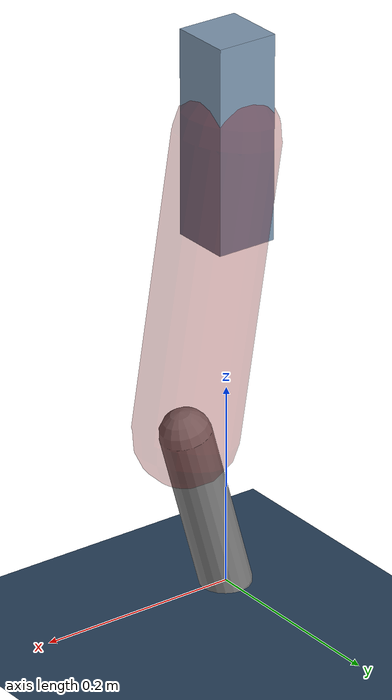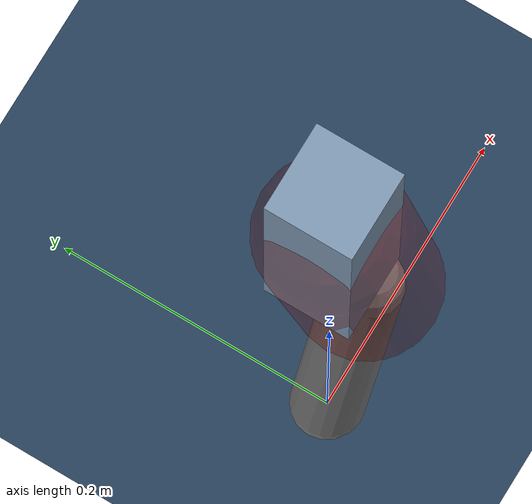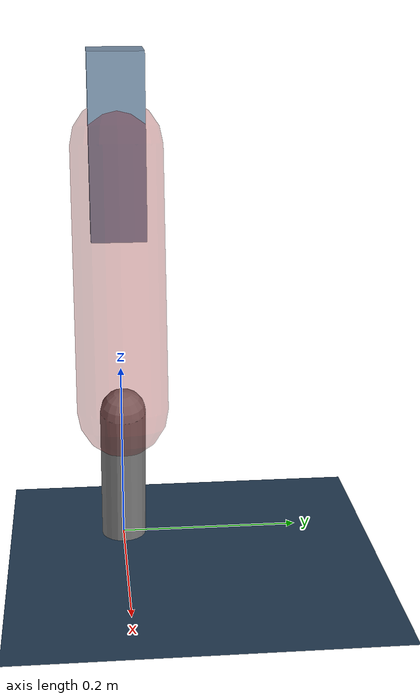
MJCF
<mujoco model="Hopper2D">
	<compiler inertiafromgeom="true" angle="radian" />
	<option timestep="0.001" integrator="implicit" cone="elliptic" solver="Newton" tolerance="1e-10" />

	<default>
		<geom contype="1" conaffinity="1" condim="3" friction="2 0.005 0.0001" solref="0.005 1" />
		<joint limited="true" damping="0.1" />
	</default>

	<asset>
		<texture name="skybox" type="skybox" builtin="gradient" rgb1=".4 .6 .8" rgb2="0 0 0" width="800" height="800" />
		<texture name="grid" type="2d" builtin="checker" rgb1=".1 .2 .3" rgb2=".2 .3 .4" width="300" height="300" mark="edge" markrgb=".2 .3 .4" />
		<material name="ground" texture="grid" texrepeat="1 1" texuniform="true" reflectance="0.1" />
		<material name="leg" rgba="0.5 0.6 0.7 1" />
	</asset>

	<worldbody>

		<geom name="floor" type="plane" size="5 5 0.25" material="ground" />

		<light directional="false" diffuse="0.8 0.8 0.8" specular="0.3 0.3 0.3" pos="0 0 2" dir="0 0 -1" />
		<light mode="targetbodycom" target="base" directional="false" diffuse="0.8 0.8 0.8" specular="0.3 0.3 0.3" pos="0 0 2" dir="0 0 -1" />

		<camera name="fixed" pos="0 -2 1" xyaxes="1 0 0 0 0 1" />
		<camera name="tracking" mode="trackcom" pos="0 -3 1" />

		<body name="root" pos="0 0 0.45134513670577486">
			<joint name="slide_x" type="slide" axis="1 0 0" range="-100 100" />
			<joint name="slide_z" type="slide" axis="0 0 1" range="0 10" />

			<body name="base" pos="0 0 0">
				<geom name="torso" type="box" size="0.03 0.03 0.1" mass="2.257" material="leg" />

				<body name="link1" pos="0 0 0" euler="0 1.4102685052369524 0">
					<joint type="hinge" axis="0 -1 0" pos="0 0 0" name="hinge1" limited="true" range="-3.14 3.14" stiffness="0" damping="0.1" />
					<geom name="thigh" type="capsule" fromto="0 0 0 0.28877266914693633 0 0" size="0.05" rgba="0.5 0 0 0.3" mass="0.9585089397820344" />

					<body name="link2" pos="0.28877266914693633 0 0" euler="0 0.4312897376957602 0">
						<joint type="hinge" axis="0 -1 0" pos="0 0 0" name="hinge2" limited="true" range="-3.14 3.14" stiffness="0" damping="0.1" />
						<geom name="shank" type="capsule" fromto="0 0 0 0.17257246755883854 0 0" size="0.025" mass="0.3775152208029547" />

					</body>
				</body>
			</body>
		</body>
	</worldbody>

	<actuator>
		<motor name="torque1" joint="hinge1" ctrlrange="-20.983433057727996 20.983433057727996" ctrllimited="true" gear="1" />
		<motor name="torque2" joint="hinge2" ctrlrange="-103.91310791636542 103.91310791636542" ctrllimited="true" gear="1" />
	</actuator>
</mujoco>
